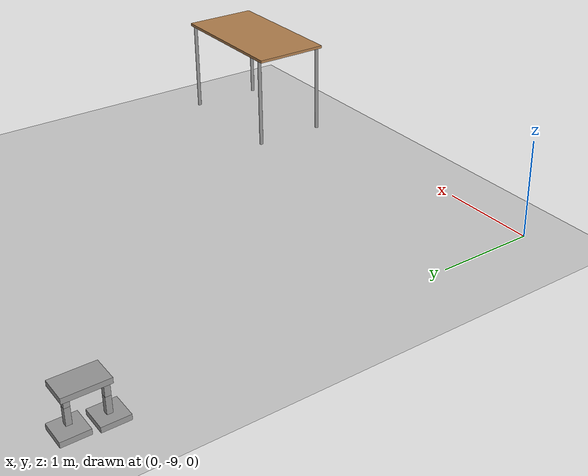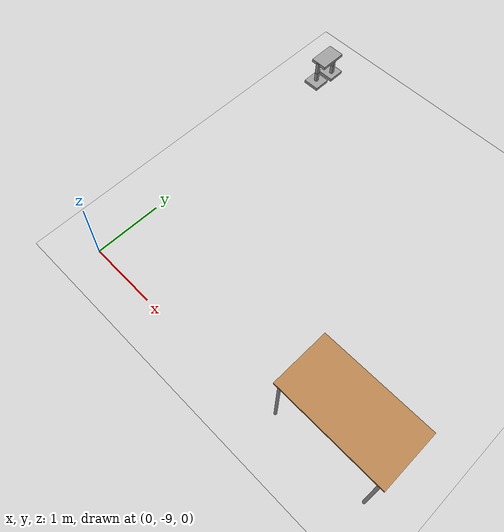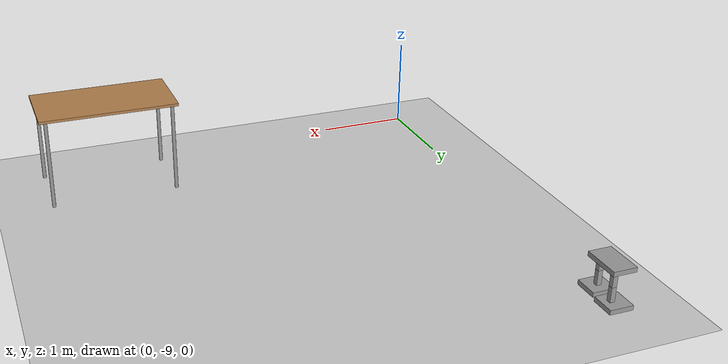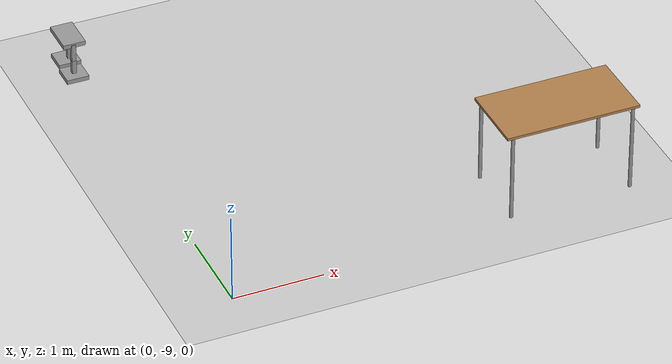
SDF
<sdf version="1.6">
 <world name="default">
  <model name="ground_plane">
   <static>1</static>
   <link name="link">
    <collision name="collision">
     <geometry><plane><normal>0 0 1</normal><size>100 100</size></plane></geometry>
     <surface><friction><ode><mu>100</mu><mu2>50</mu2></ode></friction></surface>
    </collision>
    <visual name="visual">
     <cast_shadows>0</cast_shadows>
     <geometry><plane><normal>0 0 1</normal><size>100 100</size></plane></geometry>
     <material>
      <script><uri>file://media/materials/scripts/gazebo.material</uri><name>Gazebo/Grey</name></script>
     </material>
    </visual>
   </link>
  </model>
  <model name="table_clone_2">
   <static>1</static>
   <link name="link">
    <collision name="surface">
     <pose>0 0 1 0 -0 0</pose>
     <geometry><box><size>1.5 0.8 0.03</size></box></geometry>
     <surface><friction><ode><mu>0.6</mu><mu2>0.6</mu2></ode></friction></surface>
    </collision>
    <visual name="visual1">
     <pose>0 0 1 0 -0 0</pose>
     <geometry><box><size>1.5 0.8 0.03</size></box></geometry>
     <material>
      <script><uri>file://media/materials/scripts/gazebo.material</uri><name>Gazebo/Wood</name></script>
     </material>
    </visual>
    <collision name="front_left_leg">
     <pose>0.68 0.38 0.5 0 -0 0</pose>
     <geometry><cylinder><radius>0.02</radius><length>1</length></cylinder></geometry>
    </collision>
    <visual name="front_left_leg">
     <pose>0.68 0.38 0.5 0 -0 0</pose>
     <geometry><cylinder><radius>0.02</radius><length>1</length></cylinder></geometry>
     <material>
      <script><uri>file://media/materials/scripts/gazebo.material</uri><name>Gazebo/Grey</name></script>
     </material>
    </visual>
    <collision name="front_right_leg">
     <pose>0.68 -0.38 0.5 0 -0 0</pose>
     <geometry><cylinder><radius>0.02</radius><length>1</length></cylinder></geometry>
    </collision>
    <visual name="front_right_leg">
     <pose>0.68 -0.38 0.5 0 -0 0</pose>
     <geometry><cylinder><radius>0.02</radius><length>1</length></cylinder></geometry>
     <material>
      <script><uri>file://media/materials/scripts/gazebo.material</uri><name>Gazebo/Grey</name></script>
     </material>
    </visual>
    <collision name="back_right_leg">
     <pose>-0.68 -0.38 0.5 0 -0 0</pose>
     <geometry><cylinder><radius>0.02</radius><length>1</length></cylinder></geometry>
    </collision>
    <visual name="back_right_leg">
     <pose>-0.68 -0.38 0.5 0 -0 0</pose>
     <geometry><cylinder><radius>0.02</radius><length>1</length></cylinder></geometry>
     <material>
      <script><uri>file://media/materials/scripts/gazebo.material</uri><name>Gazebo/Grey</name></script>
     </material>
    </visual>
    <collision name="back_left_leg">
     <pose>-0.68 0.38 0.5 0 -0 0</pose>
     <geometry><cylinder><radius>0.02</radius><length>1</length></cylinder></geometry>
    </collision>
    <visual name="back_left_leg">
     <pose>-0.68 0.38 0.5 0 -0 0</pose>
     <geometry><cylinder><radius>0.02</radius><length>1</length></cylinder></geometry>
     <material>
      <script><uri>file://media/materials/scripts/gazebo.material</uri><name>Gazebo/Grey</name></script>
     </material>
    </visual>
   </link>
   <pose>3.84007 -8.47892 0 0 -0 0</pose>
  </model>
  <model name="robot2_0">
   <link name="link_0">
    <inertial>
     <mass>1</mass>
     <inertia>
      <ixx>0.166667</ixx>
      <ixy>0</ixy>
      <ixz>0</ixz>
      <iyy>0.166667</iyy>
      <iyz>0</iyz>
      <izz>0.166667</izz>
     </inertia>
    </inertial>
    <pose>-0.015553 -0.153642 -0.158199 0 -0 0</pose>
    <visual name="visual">
     <geometry><box><size>0.25 0.25 0.05</size></box></geometry>
     <material>
      <lighting>1</lighting>
      <script><uri>file://media/materials/scripts/gazebo.material</uri><name>Gazebo/Grey</name></script>
      <shader type="vertex"><normal_map>__default__</normal_map></shader>
      <ambient>0.3 0.3 0.3 1</ambient>
      <diffuse>0.7 0.7 0.7 1</diffuse>
      <specular>0.01 0.01 0.01 1</specular>
      <emissive>0 0 0 1</emissive>
     </material>
    </visual>
    <collision name="collision">
     <geometry><box><size>0.25 0.25 0.05</size></box></geometry>
     <surface>
      <friction>
       <ode><mu>1</mu><mu2>1</mu2><fdir1>0 0 0</fdir1><slip1>0</slip1><slip2>0</slip2></ode>
       <torsional>
        <coefficient>1</coefficient>
        <patch_radius>0</patch_radius>
        <surface_radius>0</surface_radius>
        <use_patch_radius>1</use_patch_radius>
        <ode><slip>0</slip></ode>
       </torsional>
      </friction>
      <bounce><restitution_coefficient>0</restitution_coefficient><threshold>1e+06</threshold></bounce>
      <contact>
       <collide_without_contact>0</collide_without_contact>
       <collide_without_contact_bitmask>1</collide_without_contact_bitmask>
       <collide_bitmask>1</collide_bitmask>
       <ode>
        <soft_cfm>0</soft_cfm>
        <soft_erp>0.2</soft_erp>
        <kp>1e+13</kp>
        <kd>1</kd>
        <max_vel>0.01</max_vel>
        <min_depth>0</min_depth>
       </ode>
       <bullet>
        <split_impulse>1</split_impulse>
        <split_impulse_penetration_threshold>-0.01</split_impulse_penetration_threshold>
        <soft_cfm>0</soft_cfm>
        <soft_erp>0.2</soft_erp>
        <kp>1e+13</kp>
        <kd>1</kd>
       </bullet>
      </contact>
     </surface>
    </collision>
   </link>
   <link name="link_0_clone">
    <inertial>
     <mass>1</mass>
     <inertia>
      <ixx>0.166667</ixx>
      <ixy>0</ixy>
      <ixz>0</ixz>
      <iyy>0.166667</iyy>
      <iyz>0</iyz>
      <izz>0.166667</izz>
     </inertia>
    </inertial>
    <pose>0.010018 0.150043 -0.158199 0 -0 0</pose>
    <visual name="visual">
     <geometry><box><size>0.25 0.25 0.05</size></box></geometry>
     <material>
      <lighting>1</lighting>
      <script><uri>file://media/materials/scripts/gazebo.material</uri><name>Gazebo/Grey</name></script>
      <shader type="vertex"><normal_map>__default__</normal_map></shader>
      <ambient>0.3 0.3 0.3 1</ambient>
      <diffuse>0.7 0.7 0.7 1</diffuse>
      <specular>0.01 0.01 0.01 1</specular>
      <emissive>0 0 0 1</emissive>
     </material>
    </visual>
    <collision name="collision">
     <geometry><box><size>0.25 0.25 0.05</size></box></geometry>
     <surface>
      <friction>
       <ode><mu>1</mu><mu2>1</mu2><fdir1>0 0 0</fdir1><slip1>0</slip1><slip2>0</slip2></ode>
       <torsional>
        <coefficient>1</coefficient>
        <patch_radius>0</patch_radius>
        <surface_radius>0</surface_radius>
        <use_patch_radius>1</use_patch_radius>
        <ode><slip>0</slip></ode>
       </torsional>
      </friction>
      <bounce><restitution_coefficient>0</restitution_coefficient><threshold>1e+06</threshold></bounce>
      <contact>
       <collide_without_contact>0</collide_without_contact>
       <collide_without_contact_bitmask>1</collide_without_contact_bitmask>
       <collide_bitmask>1</collide_bitmask>
       <ode>
        <soft_cfm>0</soft_cfm>
        <soft_erp>0.2</soft_erp>
        <kp>1e+13</kp>
        <kd>1</kd>
        <max_vel>0.01</max_vel>
        <min_depth>0</min_depth>
       </ode>
       <bullet>
        <split_impulse>1</split_impulse>
        <split_impulse_penetration_threshold>-0.01</split_impulse_penetration_threshold>
        <soft_cfm>0</soft_cfm>
        <soft_erp>0.2</soft_erp>
        <kp>1e+13</kp>
        <kd>1</kd>
       </bullet>
      </contact>
     </surface>
    </collision>
   </link>
   <link name="link_0_clone_0">
    <inertial>
     <mass>1</mass>
     <inertia>
      <ixx>0.166667</ixx>
      <ixy>0</ixy>
      <ixz>0</ixz>
      <iyy>0.166667</iyy>
      <iyz>0</iyz>
      <izz>0.166667</izz>
     </inertia>
    </inertial>
    <pose>-0.003333 0.032058 0.218539 0 -0 0</pose>
    <visual name="visual">
     <geometry><box><size>0.25 0.4 0.05</size></box></geometry>
     <material>
      <lighting>1</lighting>
      <script><uri>file://media/materials/scripts/gazebo.material</uri><name>Gazebo/Grey</name></script>
      <shader type="vertex"><normal_map>__default__</normal_map></shader>
      <ambient>0.3 0.3 0.3 1</ambient>
      <diffuse>0.7 0.7 0.7 1</diffuse>
      <specular>0.01 0.01 0.01 1</specular>
      <emissive>0 0 0 1</emissive>
     </material>
    </visual>
    <collision name="collision">
     <geometry><box><size>0.25 0.4 0.05</size></box></geometry>
     <surface>
      <friction>
       <ode><mu>1</mu><mu2>1</mu2><fdir1>0 0 0</fdir1><slip1>0</slip1><slip2>0</slip2></ode>
       <torsional>
        <coefficient>1</coefficient>
        <patch_radius>0</patch_radius>
        <surface_radius>0</surface_radius>
        <use_patch_radius>1</use_patch_radius>
        <ode><slip>0</slip></ode>
       </torsional>
      </friction>
      <bounce><restitution_coefficient>0</restitution_coefficient><threshold>1e+06</threshold></bounce>
      <contact>
       <collide_without_contact>0</collide_without_contact>
       <collide_without_contact_bitmask>1</collide_without_contact_bitmask>
       <collide_bitmask>1</collide_bitmask>
       <ode>
        <soft_cfm>0</soft_cfm>
        <soft_erp>0.2</soft_erp>
        <kp>1e+13</kp>
        <kd>1</kd>
        <max_vel>0.01</max_vel>
        <min_depth>0</min_depth>
       </ode>
       <bullet>
        <split_impulse>1</split_impulse>
        <split_impulse_penetration_threshold>-0.01</split_impulse_penetration_threshold>
        <soft_cfm>0</soft_cfm>
        <soft_erp>0.2</soft_erp>
        <kp>1e+13</kp>
        <kd>1</kd>
       </bullet>
      </contact>
     </surface>
    </collision>
   </link>
   <link name="link_1">
    <inertial>
     <mass>1</mass>
     <inertia>
      <ixx>0.166667</ixx>
      <ixy>0</ixy>
      <ixz>0</ixz>
      <iyy>0.166667</iyy>
      <iyz>0</iyz>
      <izz>0.166667</izz>
     </inertia>
    </inertial>
    <pose>-0.016942 -0.151692 -0.07374 0 -0 0</pose>
    <visual name="visual">
     <geometry><box><size>0.05 0.05 0.2</size></box></geometry>
     <material>
      <lighting>1</lighting>
      <script><uri>file://media/materials/scripts/gazebo.material</uri><name>Gazebo/Grey</name></script>
      <shader type="vertex"><normal_map>__default__</normal_map></shader>
      <ambient>0.3 0.3 0.3 1</ambient>
      <diffuse>0.7 0.7 0.7 1</diffuse>
      <specular>0.01 0.01 0.01 1</specular>
      <emissive>0 0 0 1</emissive>
     </material>
    </visual>
    <collision name="collision">
     <geometry><box><size>0.05 0.05 0.2</size></box></geometry>
     <surface>
      <friction>
       <ode><mu>1</mu><mu2>1</mu2><fdir1>0 0 0</fdir1><slip1>0</slip1><slip2>0</slip2></ode>
       <torsional>
        <coefficient>1</coefficient>
        <patch_radius>0</patch_radius>
        <surface_radius>0</surface_radius>
        <use_patch_radius>1</use_patch_radius>
        <ode><slip>0</slip></ode>
       </torsional>
      </friction>
      <bounce><restitution_coefficient>0</restitution_coefficient><threshold>1e+06</threshold></bounce>
      <contact>
       <collide_without_contact>0</collide_without_contact>
       <collide_without_contact_bitmask>1</collide_without_contact_bitmask>
       <collide_bitmask>1</collide_bitmask>
       <ode>
        <soft_cfm>0</soft_cfm>
        <soft_erp>0.2</soft_erp>
        <kp>1e+13</kp>
        <kd>1</kd>
        <max_vel>0.01</max_vel>
        <min_depth>0</min_depth>
       </ode>
       <bullet>
        <split_impulse>1</split_impulse>
        <split_impulse_penetration_threshold>-0.01</split_impulse_penetration_threshold>
        <soft_cfm>0</soft_cfm>
        <soft_erp>0.2</soft_erp>
        <kp>1e+13</kp>
        <kd>1</kd>
       </bullet>
      </contact>
     </surface>
    </collision>
   </link>
   <link name="link_1_clone">
    <inertial>
     <mass>1</mass>
     <inertia>
      <ixx>0.166667</ixx>
      <ixy>0</ixy>
      <ixz>0</ixz>
      <iyy>0.166667</iyy>
      <iyz>0</iyz>
      <izz>0.166667</izz>
     </inertia>
    </inertial>
    <pose>0.040952 0.141305 -0.07374 0 -0 0</pose>
    <visual name="visual">
     <geometry><box><size>0.05 0.05 0.2</size></box></geometry>
     <material>
      <lighting>1</lighting>
      <script><uri>file://media/materials/scripts/gazebo.material</uri><name>Gazebo/Grey</name></script>
      <shader type="vertex"><normal_map>__default__</normal_map></shader>
      <ambient>0.3 0.3 0.3 1</ambient>
      <diffuse>0.7 0.7 0.7 1</diffuse>
      <specular>0.01 0.01 0.01 1</specular>
      <emissive>0 0 0 1</emissive>
     </material>
    </visual>
    <collision name="collision">
     <geometry><box><size>0.05 0.05 0.2</size></box></geometry>
     <surface>
      <friction>
       <ode><mu>1</mu><mu2>1</mu2><fdir1>0 0 0</fdir1><slip1>0</slip1><slip2>0</slip2></ode>
       <torsional>
        <coefficient>1</coefficient>
        <patch_radius>0</patch_radius>
        <surface_radius>0</surface_radius>
        <use_patch_radius>1</use_patch_radius>
        <ode><slip>0</slip></ode>
       </torsional>
      </friction>
      <bounce><restitution_coefficient>0</restitution_coefficient><threshold>1e+06</threshold></bounce>
      <contact>
       <collide_without_contact>0</collide_without_contact>
       <collide_without_contact_bitmask>1</collide_without_contact_bitmask>
       <collide_bitmask>1</collide_bitmask>
       <ode>
        <soft_cfm>0</soft_cfm>
        <soft_erp>0.2</soft_erp>
        <kp>1e+13</kp>
        <kd>1</kd>
        <max_vel>0.01</max_vel>
        <min_depth>0</min_depth>
       </ode>
       <bullet>
        <split_impulse>1</split_impulse>
        <split_impulse_penetration_threshold>-0.01</split_impulse_penetration_threshold>
        <soft_cfm>0</soft_cfm>
        <soft_erp>0.2</soft_erp>
        <kp>1e+13</kp>
        <kd>1</kd>
       </bullet>
      </contact>
     </surface>
    </collision>
   </link>
   <link name="link_2">
    <inertial>
     <mass>1</mass>
     <inertia>
      <ixx>0.166667</ixx>
      <ixy>0</ixy>
      <ixz>0</ixz>
      <iyy>0.166667</iyy>
      <iyz>0</iyz>
      <izz>0.166667</izz>
     </inertia>
    </inertial>
    <pose>-0.016942 -0.151692 0.12626 0 -0 0</pose>
    <visual name="visual">
     <geometry><box><size>0.05 0.05 0.2</size></box></geometry>
     <material>
      <lighting>1</lighting>
      <script><uri>file://media/materials/scripts/gazebo.material</uri><name>Gazebo/Grey</name></script>
      <shader type="vertex"><normal_map>__default__</normal_map></shader>
      <ambient>0.3 0.3 0.3 1</ambient>
      <diffuse>0.7 0.7 0.7 1</diffuse>
      <specular>0.01 0.01 0.01 1</specular>
      <emissive>0 0 0 1</emissive>
     </material>
    </visual>
    <collision name="collision">
     <geometry><box><size>0.05 0.05 0.2</size></box></geometry>
     <surface>
      <friction>
       <ode><mu>1</mu><mu2>1</mu2><fdir1>0 0 0</fdir1><slip1>0</slip1><slip2>0</slip2></ode>
       <torsional>
        <coefficient>1</coefficient>
        <patch_radius>0</patch_radius>
        <surface_radius>0</surface_radius>
        <use_patch_radius>1</use_patch_radius>
        <ode><slip>0</slip></ode>
       </torsional>
      </friction>
      <bounce><restitution_coefficient>0</restitution_coefficient><threshold>1e+06</threshold></bounce>
      <contact>
       <collide_without_contact>0</collide_without_contact>
       <collide_without_contact_bitmask>1</collide_without_contact_bitmask>
       <collide_bitmask>1</collide_bitmask>
       <ode>
        <soft_cfm>0</soft_cfm>
        <soft_erp>0.2</soft_erp>
        <kp>1e+13</kp>
        <kd>1</kd>
        <max_vel>0.01</max_vel>
        <min_depth>0</min_depth>
       </ode>
       <bullet>
        <split_impulse>1</split_impulse>
        <split_impulse_penetration_threshold>-0.01</split_impulse_penetration_threshold>
        <soft_cfm>0</soft_cfm>
        <soft_erp>0.2</soft_erp>
        <kp>1e+13</kp>
        <kd>1</kd>
       </bullet>
      </contact>
     </surface>
    </collision>
   </link>
   <link name="link_2_clone">
    <inertial>
     <mass>1</mass>
     <inertia>
      <ixx>0.166667</ixx>
      <ixy>0</ixy>
      <ixz>0</ixz>
      <iyy>0.166667</iyy>
      <iyz>0</iyz>
      <izz>0.166667</izz>
     </inertia>
    </inertial>
    <pose>0.040952 0.141305 0.12626 0 -0 0</pose>
    <visual name="visual">
     <geometry><box><size>0.05 0.05 0.2</size></box></geometry>
     <material>
      <lighting>1</lighting>
      <script><uri>file://media/materials/scripts/gazebo.material</uri><name>Gazebo/Grey</name></script>
      <shader type="vertex"><normal_map>__default__</normal_map></shader>
      <ambient>0.3 0.3 0.3 1</ambient>
      <diffuse>0.7 0.7 0.7 1</diffuse>
      <specular>0.01 0.01 0.01 1</specular>
      <emissive>0 0 0 1</emissive>
     </material>
    </visual>
    <collision name="collision">
     <geometry><box><size>0.05 0.05 0.2</size></box></geometry>
     <surface>
      <friction>
       <ode><mu>1</mu><mu2>1</mu2><fdir1>0 0 0</fdir1><slip1>0</slip1><slip2>0</slip2></ode>
       <torsional>
        <coefficient>1</coefficient>
        <patch_radius>0</patch_radius>
        <surface_radius>0</surface_radius>
        <use_patch_radius>1</use_patch_radius>
        <ode><slip>0</slip></ode>
       </torsional>
      </friction>
      <bounce><restitution_coefficient>0</restitution_coefficient><threshold>1e+06</threshold></bounce>
      <contact>
       <collide_without_contact>0</collide_without_contact>
       <collide_without_contact_bitmask>1</collide_without_contact_bitmask>
       <collide_bitmask>1</collide_bitmask>
       <ode>
        <soft_cfm>0</soft_cfm>
        <soft_erp>0.2</soft_erp>
        <kp>1e+13</kp>
        <kd>1</kd>
        <max_vel>0.01</max_vel>
        <min_depth>0</min_depth>
       </ode>
       <bullet>
        <split_impulse>1</split_impulse>
        <split_impulse_penetration_threshold>-0.01</split_impulse_penetration_threshold>
        <soft_cfm>0</soft_cfm>
        <soft_erp>0.2</soft_erp>
        <kp>1e+13</kp>
        <kd>1</kd>
       </bullet>
      </contact>
     </surface>
    </collision>
   </link>
   <joint name="link_0_clone_0_JOINT_4" type="revolute">
    <parent>link_0_clone_0</parent>
    <child>link_2_clone</child>
    <axis>
     <xyz>1 0 0</xyz>
     <use_parent_model_frame>0</use_parent_model_frame>
     <limit>
      <lower>-1.79769e+308</lower>
      <upper>1.79769e+308</upper>
      <effort>-1</effort>
      <velocity>-1</velocity>
     </limit>
     <dynamics>
      <spring_reference>0</spring_reference>
      <spring_stiffness>0</spring_stiffness>
      <damping>0</damping>
     </dynamics>
    </axis>
    <physics>
     <ode><limit><cfm>0</cfm><erp>0.2</erp></limit><suspension><cfm>0</cfm><erp>0.2</erp></suspension></ode>
    </physics>
   </joint>
   <joint name="link_0_clone_0_JOINT_5" type="revolute">
    <parent>link_0_clone_0</parent>
    <child>link_2</child>
    <axis>
     <xyz>1 0 0</xyz>
     <use_parent_model_frame>0</use_parent_model_frame>
     <limit>
      <lower>-1.79769e+308</lower>
      <upper>1.79769e+308</upper>
      <effort>-1</effort>
      <velocity>-1</velocity>
     </limit>
     <dynamics>
      <spring_reference>0</spring_reference>
      <spring_stiffness>0</spring_stiffness>
      <damping>0</damping>
     </dynamics>
    </axis>
    <physics>
     <ode><limit><cfm>0</cfm><erp>0.2</erp></limit><suspension><cfm>0</cfm><erp>0.2</erp></suspension></ode>
    </physics>
   </joint>
   <joint name="link_1_JOINT_0" type="fixed">
    <parent>link_1</parent>
    <child>link_0</child>
    <physics>
     <ode><limit><cfm>0</cfm><erp>0.2</erp></limit><suspension><cfm>0</cfm><erp>0.2</erp></suspension></ode>
    </physics>
   </joint>
   <joint name="link_1_clone_JOINT_2" type="fixed">
    <parent>link_1_clone</parent>
    <child>link_0_clone</child>
    <physics>
     <ode><limit><cfm>0</cfm><erp>0.2</erp></limit><suspension><cfm>0</cfm><erp>0.2</erp></suspension></ode>
    </physics>
   </joint>
   <joint name="link_2_JOINT_1" type="revolute">
    <parent>link_2</parent>
    <child>link_1</child>
    <pose>0 0 0.2 0 -0 0</pose>
    <axis>
     <xyz>1 0 0</xyz>
     <use_parent_model_frame>0</use_parent_model_frame>
     <limit>
      <lower>-1.79769e+308</lower>
      <upper>1.79769e+308</upper>
      <effort>-1</effort>
      <velocity>-1</velocity>
     </limit>
     <dynamics>
      <spring_reference>0</spring_reference>
      <spring_stiffness>0</spring_stiffness>
      <damping>0</damping>
     </dynamics>
    </axis>
    <physics>
     <ode><limit><cfm>0</cfm><erp>0.2</erp></limit><suspension><cfm>0</cfm><erp>0.2</erp></suspension></ode>
    </physics>
   </joint>
   <joint name="link_2_clone_JOINT_3" type="revolute">
    <parent>link_2_clone</parent>
    <child>link_1_clone</child>
    <axis>
     <xyz>1 0 0</xyz>
     <use_parent_model_frame>0</use_parent_model_frame>
     <limit>
      <lower>-1.79769e+308</lower>
      <upper>1.79769e+308</upper>
      <effort>-1</effort>
      <velocity>-1</velocity>
     </limit>
     <dynamics>
      <spring_reference>0</spring_reference>
      <spring_stiffness>0</spring_stiffness>
      <damping>0</damping>
     </dynamics>
    </axis>
    <physics>
     <ode><limit><cfm>0</cfm><erp>0.2</erp></limit><suspension><cfm>0</cfm><erp>0.2</erp></suspension></ode>
    </physics>
   </joint>
   <static>0</static>
   <pose>-0.02893 -4.52253 0.183199 0 -0 0.001034</pose>
  </model>
 </world>
</sdf>
